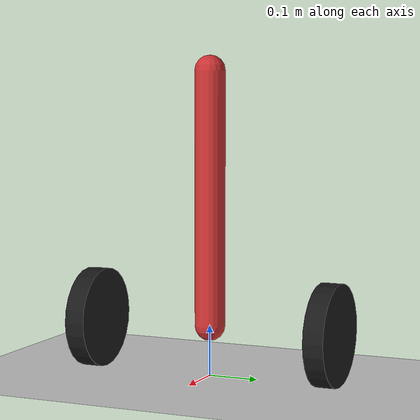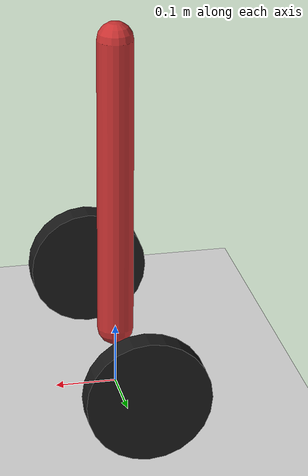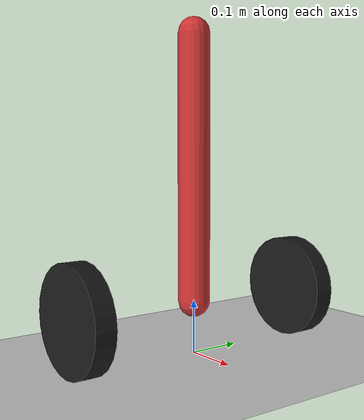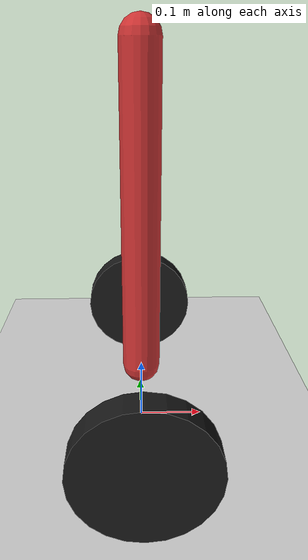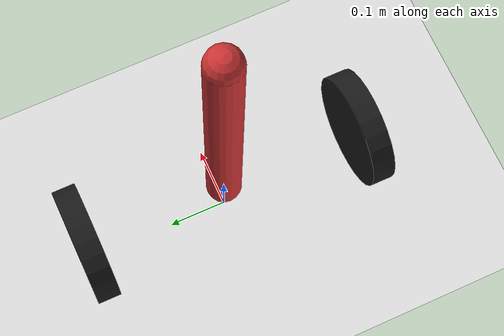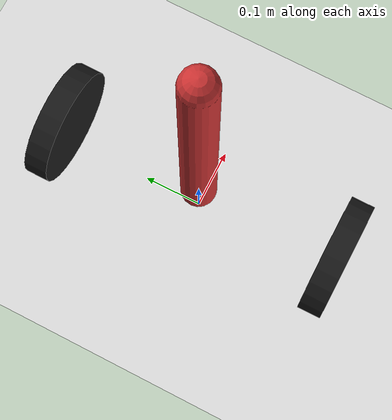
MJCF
<mujoco model="segway">
  <option gravity="0 0 -9.81" timestep="0.002"/>

  <asset>
    <texture type="skybox" builtin="gradient" rgb1="0.9 0.9 0.9" rgb2="0.8 0.8 0.8" width="512" height="512"/>
    <texture name="checker" type="2d" builtin="checker" rgb1="0.8 0.8 0.8" rgb2="0.95 0.95 0.95" width="512" height="512"/>
    <material name="matplane" texture="checker" texrepeat="1 1" reflectance="0.5"/>
    <material name="matwheel" rgba="0.1 0.1 0.1 1"/>
  </asset>

  <worldbody>
    <!-- Ground -->
    <geom type="plane" pos="0 0 0" size="100 100 0.1" material="matplane" condim="3" friction="1.0 0.005 0.0001"/>

    <!-- Segway Chassis -->
    <body name="chassis" pos="0 0 0.1">
      <freejoint name="root"/>

      <!-- Inertia -->
      <inertial pos="0 0 0.4" mass="6.0" diaginertia="0.25 0.25 0.05"/>

      <!-- Visuals -->
      <geom type="capsule" fromto="0 0 0 0 0 0.5" size="0.03" rgba="0.8 0.2 0.2 1"/>
      <site name="chassis_site" pos="0 0 0" size="0.01"/>
      <camera name="front_cam" pos="0.1 0 0.45" xyaxes="0 -1 0 0 0 1" fovy="90"/>

      <!-- Left Wheel -->
      <body name="left_wheel" pos="0 0.25 0">
        <inertial pos="0 0 0" mass="0.432" diaginertia="0.001 0.001 0.001"/>
        <joint name="left_wheel_joint" type="hinge" axis="0 1 0" damping="0.05"/>
        <geom type="cylinder" size="0.1 0.02" euler="90 0 0" material="matwheel" condim="3" friction="1.5 0.005 0.0001"/>
      </body>

      <!-- Right Wheel -->
      <body name="right_wheel" pos="0 -0.25 0">
        <inertial pos="0 0 0" mass="0.432" diaginertia="0.001 0.001 0.001"/>
        <joint name="right_wheel_joint" type="hinge" axis="0 1 0" damping="0.05"/>
        <geom type="cylinder" size="0.1 0.02" euler="90 0 0" material="matwheel" condim="3" friction="1.5 0.005 0.0001"/>
      </body>
    </body>
  </worldbody>

  <actuator>
    <!-- Torque Motors -->
    <motor name="left_motor" joint="left_wheel_joint" gear="1" ctrllimited="true" ctrlrange="-200 200"/>
    <motor name="right_motor" joint="right_wheel_joint" gear="1" ctrllimited="true" ctrlrange="-200 200"/>
  </actuator>

  <sensor>
    <framepos objtype="site" objname="chassis_site"/>
    <framequat objtype="site" objname="chassis_site"/>
    <framelinvel objtype="site" objname="chassis_site"/>
    <frameangvel objtype="site" objname="chassis_site"/>
    <jointvel joint="left_wheel_joint"/>
    <jointvel joint="right_wheel_joint"/>
  </sensor>
</mujoco>
